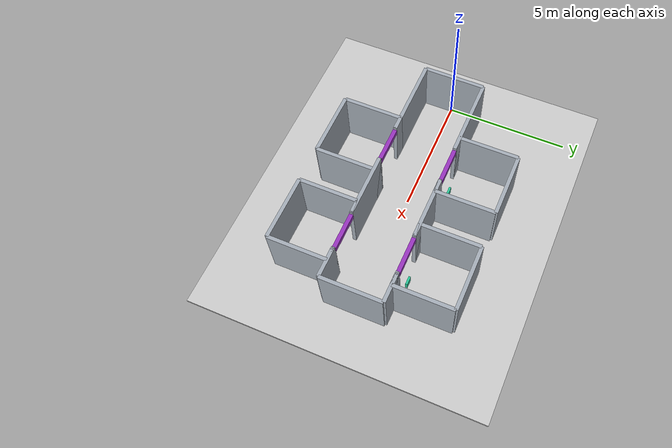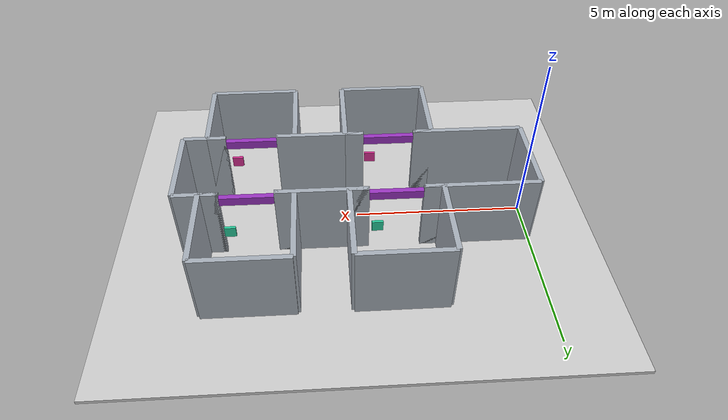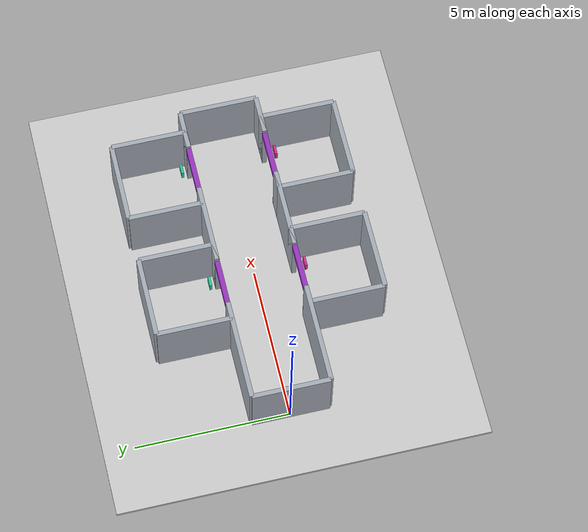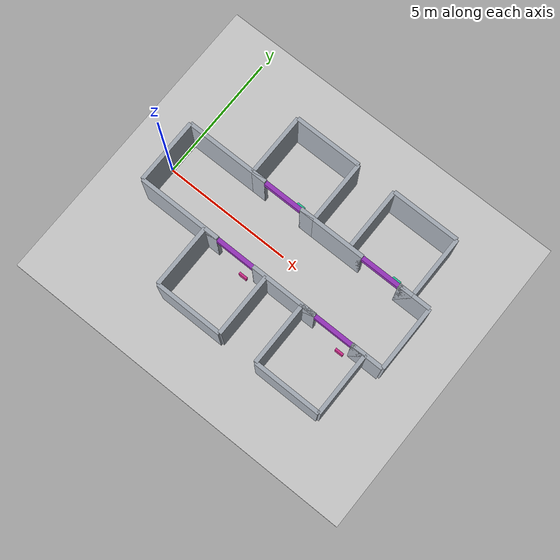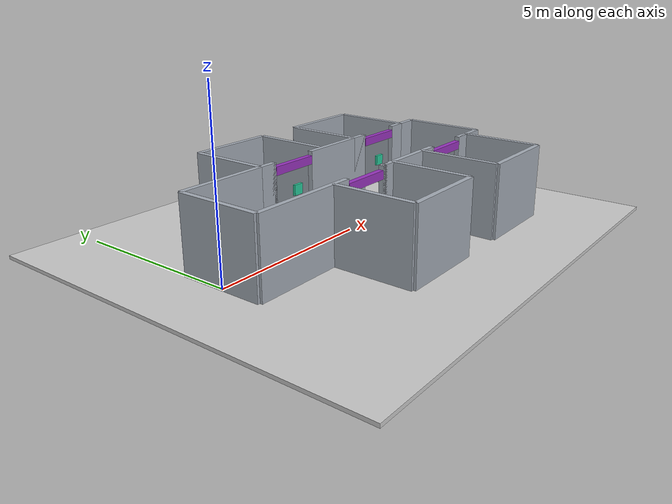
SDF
<sdf version="1.9">
  <world name="default">
    <plugin filename="gz-sim-physics-system" name="gz::sim::systems::Physics" />
    <plugin filename="gz-sim-user-commands-system" name="gz::sim::systems::UserCommands" />
    <plugin filename="gz-sim-sensors-system" name="gz::sim::systems::Sensors">
      <render_engine>ogre2</render_engine>
    </plugin>
    <plugin filename="gz-sim-imu-system" name="gz::sim::systems::Imu" />
    <plugin filename="gz-sim-contact-system" name="gz::sim::systems::Contact" />
    <physics name="3ms" type="ode">
      <max_step_size>0.003</max_step_size>
      <real_time_factor>1</real_time_factor>
    </physics>
    <light name="sun" type="directional">
      <pose>0 0 10 0 0 0</pose>
      <diffuse>0.9 0.9 0.9 1</diffuse>
      <direction>-0.5 0.1 -0.9</direction>
    </light>
    <model name="ground_plane">
      <static>true</static>
      <pose>5.05 0 -0.05 0 0 0</pose>
      <link name="body">
        <collision name="collision">
          <geometry>
            <box>
              <size>14.1 12 0.1</size>
            </box>
          </geometry>
        </collision>
        <visual name="visual">
          <geometry>
            <box>
              <size>14.1 12 0.1</size>
            </box>
          </geometry>
          <material>
            <ambient>0.8 0.8 0.8 1</ambient>
            <diffuse>0.8 0.8 0.8 1</diffuse>
          </material>
        </visual>
      </link>
    </model>
    <model name="start_wall">
      <static>true</static>
      <pose>0 0 1.1 0 0 0</pose>
      <link name="body">
        <collision name="collision">
          <geometry>
            <box>
              <size>0.15 2.5 2.2</size>
            </box>
          </geometry>
        </collision>
        <visual name="visual">
          <geometry>
            <box>
              <size>0.15 2.5 2.2</size>
            </box>
          </geometry>
          <material>
            <ambient>0.65 0.68 0.72 1</ambient>
            <diffuse>0.65 0.68 0.72 1</diffuse>
          </material>
        </visual>
      </link>
    </model>
    <model name="end_wall">
      <static>true</static>
      <pose>10.1 0 1.1 0 0 0</pose>
      <link name="body">
        <collision name="collision">
          <geometry>
            <box>
              <size>0.15 2.5 2.2</size>
            </box>
          </geometry>
        </collision>
        <visual name="visual">
          <geometry>
            <box>
              <size>0.15 2.5 2.2</size>
            </box>
          </geometry>
          <material>
            <ambient>0.65 0.68 0.72 1</ambient>
            <diffuse>0.65 0.68 0.72 1</diffuse>
          </material>
        </visual>
      </link>
    </model>
    <model name="hall_-1_1">
      <static>true</static>
      <pose>1.625 -1.25 1.1 0 0 0</pose>
      <link name="body">
        <collision name="collision">
          <geometry>
            <box>
              <size>3.25 0.15 2.2</size>
            </box>
          </geometry>
        </collision>
        <visual name="visual">
          <geometry>
            <box>
              <size>3.25 0.15 2.2</size>
            </box>
          </geometry>
          <material>
            <ambient>0.65 0.68 0.72 1</ambient>
            <diffuse>0.65 0.68 0.72 1</diffuse>
          </material>
        </visual>
      </link>
    </model>
    <model name="room_-1_1_-1">
      <static>true</static>
      <pose>2.7 -2.45 1.1 0 0 0</pose>
      <link name="body">
        <collision name="collision">
          <geometry>
            <box>
              <size>0.15 2.4 2.2</size>
            </box>
          </geometry>
        </collision>
        <visual name="visual">
          <geometry>
            <box>
              <size>0.15 2.4 2.2</size>
            </box>
          </geometry>
          <material>
            <ambient>0.65 0.68 0.72 1</ambient>
            <diffuse>0.65 0.68 0.72 1</diffuse>
          </material>
        </visual>
      </link>
    </model>
    <model name="room_-1_1_1">
      <static>true</static>
      <pose>5.3 -2.45 1.1 0 0 0</pose>
      <link name="body">
        <collision name="collision">
          <geometry>
            <box>
              <size>0.15 2.4 2.2</size>
            </box>
          </geometry>
        </collision>
        <visual name="visual">
          <geometry>
            <box>
              <size>0.15 2.4 2.2</size>
            </box>
          </geometry>
          <material>
            <ambient>0.65 0.68 0.72 1</ambient>
            <diffuse>0.65 0.68 0.72 1</diffuse>
          </material>
        </visual>
      </link>
    </model>
    <model name="room_end_-1_1">
      <static>true</static>
      <pose>4.0 -3.65 1.1 0 0 0</pose>
      <link name="body">
        <collision name="collision">
          <geometry>
            <box>
              <size>2.6 0.15 2.2</size>
            </box>
          </geometry>
        </collision>
        <visual name="visual">
          <geometry>
            <box>
              <size>2.6 0.15 2.2</size>
            </box>
          </geometry>
          <material>
            <ambient>0.65 0.68 0.72 1</ambient>
            <diffuse>0.65 0.68 0.72 1</diffuse>
          </material>
        </visual>
      </link>
    </model>
    <model name="jamb_-1_1_-1">
      <static>true</static>
      <pose>2.975 -1.25 1.1 0 0 0</pose>
      <link name="body">
        <collision name="collision">
          <geometry>
            <box>
              <size>0.55 0.15 2.2</size>
            </box>
          </geometry>
        </collision>
        <visual name="visual">
          <geometry>
            <box>
              <size>0.55 0.15 2.2</size>
            </box>
          </geometry>
          <material>
            <ambient>0.65 0.68 0.72 1</ambient>
            <diffuse>0.65 0.68 0.72 1</diffuse>
          </material>
        </visual>
      </link>
    </model>
    <model name="jamb_-1_1_1">
      <static>true</static>
      <pose>5.025 -1.25 1.1 0 0 0</pose>
      <link name="body">
        <collision name="collision">
          <geometry>
            <box>
              <size>0.55 0.15 2.2</size>
            </box>
          </geometry>
        </collision>
        <visual name="visual">
          <geometry>
            <box>
              <size>0.55 0.15 2.2</size>
            </box>
          </geometry>
          <material>
            <ambient>0.65 0.68 0.72 1</ambient>
            <diffuse>0.65 0.68 0.72 1</diffuse>
          </material>
        </visual>
      </link>
    </model>
    <model name="hall_-1_2">
      <static>true</static>
      <pose>6.05 -1.25 1.1 0 0 0</pose>
      <link name="body">
        <collision name="collision">
          <geometry>
            <box>
              <size>2.5999999999999996 0.15 2.2</size>
            </box>
          </geometry>
        </collision>
        <visual name="visual">
          <geometry>
            <box>
              <size>2.5999999999999996 0.15 2.2</size>
            </box>
          </geometry>
          <material>
            <ambient>0.65 0.68 0.72 1</ambient>
            <diffuse>0.65 0.68 0.72 1</diffuse>
          </material>
        </visual>
      </link>
    </model>
    <model name="room_-1_2_-1">
      <static>true</static>
      <pose>6.8 -2.45 1.1 0 0 0</pose>
      <link name="body">
        <collision name="collision">
          <geometry>
            <box>
              <size>0.15 2.4 2.2</size>
            </box>
          </geometry>
        </collision>
        <visual name="visual">
          <geometry>
            <box>
              <size>0.15 2.4 2.2</size>
            </box>
          </geometry>
          <material>
            <ambient>0.65 0.68 0.72 1</ambient>
            <diffuse>0.65 0.68 0.72 1</diffuse>
          </material>
        </visual>
      </link>
    </model>
    <model name="room_-1_2_1">
      <static>true</static>
      <pose>9.4 -2.45 1.1 0 0 0</pose>
      <link name="body">
        <collision name="collision">
          <geometry>
            <box>
              <size>0.15 2.4 2.2</size>
            </box>
          </geometry>
        </collision>
        <visual name="visual">
          <geometry>
            <box>
              <size>0.15 2.4 2.2</size>
            </box>
          </geometry>
          <material>
            <ambient>0.65 0.68 0.72 1</ambient>
            <diffuse>0.65 0.68 0.72 1</diffuse>
          </material>
        </visual>
      </link>
    </model>
    <model name="room_end_-1_2">
      <static>true</static>
      <pose>8.1 -3.65 1.1 0 0 0</pose>
      <link name="body">
        <collision name="collision">
          <geometry>
            <box>
              <size>2.6 0.15 2.2</size>
            </box>
          </geometry>
        </collision>
        <visual name="visual">
          <geometry>
            <box>
              <size>2.6 0.15 2.2</size>
            </box>
          </geometry>
          <material>
            <ambient>0.65 0.68 0.72 1</ambient>
            <diffuse>0.65 0.68 0.72 1</diffuse>
          </material>
        </visual>
      </link>
    </model>
    <model name="jamb_-1_2_-1">
      <static>true</static>
      <pose>7.074999999999999 -1.25 1.1 0 0 0</pose>
      <link name="body">
        <collision name="collision">
          <geometry>
            <box>
              <size>0.55 0.15 2.2</size>
            </box>
          </geometry>
        </collision>
        <visual name="visual">
          <geometry>
            <box>
              <size>0.55 0.15 2.2</size>
            </box>
          </geometry>
          <material>
            <ambient>0.65 0.68 0.72 1</ambient>
            <diffuse>0.65 0.68 0.72 1</diffuse>
          </material>
        </visual>
      </link>
    </model>
    <model name="jamb_-1_2_1">
      <static>true</static>
      <pose>9.125 -1.25 1.1 0 0 0</pose>
      <link name="body">
        <collision name="collision">
          <geometry>
            <box>
              <size>0.55 0.15 2.2</size>
            </box>
          </geometry>
        </collision>
        <visual name="visual">
          <geometry>
            <box>
              <size>0.55 0.15 2.2</size>
            </box>
          </geometry>
          <material>
            <ambient>0.65 0.68 0.72 1</ambient>
            <diffuse>0.65 0.68 0.72 1</diffuse>
          </material>
        </visual>
      </link>
    </model>
    <model name="hall_end_-1">
      <static>true</static>
      <pose>9.475 -1.25 1.1 0 0 0</pose>
      <link name="body">
        <collision name="collision">
          <geometry>
            <box>
              <size>1.25 0.15 2.2</size>
            </box>
          </geometry>
        </collision>
        <visual name="visual">
          <geometry>
            <box>
              <size>1.25 0.15 2.2</size>
            </box>
          </geometry>
          <material>
            <ambient>0.65 0.68 0.72 1</ambient>
            <diffuse>0.65 0.68 0.72 1</diffuse>
          </material>
        </visual>
      </link>
    </model>
    <model name="hall_1_1">
      <static>true</static>
      <pose>1.625 1.25 1.1 0 0 0</pose>
      <link name="body">
        <collision name="collision">
          <geometry>
            <box>
              <size>3.25 0.15 2.2</size>
            </box>
          </geometry>
        </collision>
        <visual name="visual">
          <geometry>
            <box>
              <size>3.25 0.15 2.2</size>
            </box>
          </geometry>
          <material>
            <ambient>0.65 0.68 0.72 1</ambient>
            <diffuse>0.65 0.68 0.72 1</diffuse>
          </material>
        </visual>
      </link>
    </model>
    <model name="room_1_1_-1">
      <static>true</static>
      <pose>2.7 2.45 1.1 0 0 0</pose>
      <link name="body">
        <collision name="collision">
          <geometry>
            <box>
              <size>0.15 2.4 2.2</size>
            </box>
          </geometry>
        </collision>
        <visual name="visual">
          <geometry>
            <box>
              <size>0.15 2.4 2.2</size>
            </box>
          </geometry>
          <material>
            <ambient>0.65 0.68 0.72 1</ambient>
            <diffuse>0.65 0.68 0.72 1</diffuse>
          </material>
        </visual>
      </link>
    </model>
    <model name="room_1_1_1">
      <static>true</static>
      <pose>5.3 2.45 1.1 0 0 0</pose>
      <link name="body">
        <collision name="collision">
          <geometry>
            <box>
              <size>0.15 2.4 2.2</size>
            </box>
          </geometry>
        </collision>
        <visual name="visual">
          <geometry>
            <box>
              <size>0.15 2.4 2.2</size>
            </box>
          </geometry>
          <material>
            <ambient>0.65 0.68 0.72 1</ambient>
            <diffuse>0.65 0.68 0.72 1</diffuse>
          </material>
        </visual>
      </link>
    </model>
    <model name="room_end_1_1">
      <static>true</static>
      <pose>4.0 3.65 1.1 0 0 0</pose>
      <link name="body">
        <collision name="collision">
          <geometry>
            <box>
              <size>2.6 0.15 2.2</size>
            </box>
          </geometry>
        </collision>
        <visual name="visual">
          <geometry>
            <box>
              <size>2.6 0.15 2.2</size>
            </box>
          </geometry>
          <material>
            <ambient>0.65 0.68 0.72 1</ambient>
            <diffuse>0.65 0.68 0.72 1</diffuse>
          </material>
        </visual>
      </link>
    </model>
    <model name="jamb_1_1_-1">
      <static>true</static>
      <pose>2.975 1.25 1.1 0 0 0</pose>
      <link name="body">
        <collision name="collision">
          <geometry>
            <box>
              <size>0.55 0.15 2.2</size>
            </box>
          </geometry>
        </collision>
        <visual name="visual">
          <geometry>
            <box>
              <size>0.55 0.15 2.2</size>
            </box>
          </geometry>
          <material>
            <ambient>0.65 0.68 0.72 1</ambient>
            <diffuse>0.65 0.68 0.72 1</diffuse>
          </material>
        </visual>
      </link>
    </model>
    <model name="jamb_1_1_1">
      <static>true</static>
      <pose>5.025 1.25 1.1 0 0 0</pose>
      <link name="body">
        <collision name="collision">
          <geometry>
            <box>
              <size>0.55 0.15 2.2</size>
            </box>
          </geometry>
        </collision>
        <visual name="visual">
          <geometry>
            <box>
              <size>0.55 0.15 2.2</size>
            </box>
          </geometry>
          <material>
            <ambient>0.65 0.68 0.72 1</ambient>
            <diffuse>0.65 0.68 0.72 1</diffuse>
          </material>
        </visual>
      </link>
    </model>
    <model name="hall_1_2">
      <static>true</static>
      <pose>6.05 1.25 1.1 0 0 0</pose>
      <link name="body">
        <collision name="collision">
          <geometry>
            <box>
              <size>2.5999999999999996 0.15 2.2</size>
            </box>
          </geometry>
        </collision>
        <visual name="visual">
          <geometry>
            <box>
              <size>2.5999999999999996 0.15 2.2</size>
            </box>
          </geometry>
          <material>
            <ambient>0.65 0.68 0.72 1</ambient>
            <diffuse>0.65 0.68 0.72 1</diffuse>
          </material>
        </visual>
      </link>
    </model>
    <model name="room_1_2_-1">
      <static>true</static>
      <pose>6.8 2.45 1.1 0 0 0</pose>
      <link name="body">
        <collision name="collision">
          <geometry>
            <box>
              <size>0.15 2.4 2.2</size>
            </box>
          </geometry>
        </collision>
        <visual name="visual">
          <geometry>
            <box>
              <size>0.15 2.4 2.2</size>
            </box>
          </geometry>
          <material>
            <ambient>0.65 0.68 0.72 1</ambient>
            <diffuse>0.65 0.68 0.72 1</diffuse>
          </material>
        </visual>
      </link>
    </model>
    <model name="room_1_2_1">
      <static>true</static>
      <pose>9.4 2.45 1.1 0 0 0</pose>
      <link name="body">
        <collision name="collision">
          <geometry>
            <box>
              <size>0.15 2.4 2.2</size>
            </box>
          </geometry>
        </collision>
        <visual name="visual">
          <geometry>
            <box>
              <size>0.15 2.4 2.2</size>
            </box>
          </geometry>
          <material>
            <ambient>0.65 0.68 0.72 1</ambient>
            <diffuse>0.65 0.68 0.72 1</diffuse>
          </material>
        </visual>
      </link>
    </model>
    <model name="room_end_1_2">
      <static>true</static>
      <pose>8.1 3.65 1.1 0 0 0</pose>
      <link name="body">
        <collision name="collision">
          <geometry>
            <box>
              <size>2.6 0.15 2.2</size>
            </box>
          </geometry>
        </collision>
        <visual name="visual">
          <geometry>
            <box>
              <size>2.6 0.15 2.2</size>
            </box>
          </geometry>
          <material>
            <ambient>0.65 0.68 0.72 1</ambient>
            <diffuse>0.65 0.68 0.72 1</diffuse>
          </material>
        </visual>
      </link>
    </model>
    <model name="jamb_1_2_-1">
      <static>true</static>
      <pose>7.074999999999999 1.25 1.1 0 0 0</pose>
      <link name="body">
        <collision name="collision">
          <geometry>
            <box>
              <size>0.55 0.15 2.2</size>
            </box>
          </geometry>
        </collision>
        <visual name="visual">
          <geometry>
            <box>
              <size>0.55 0.15 2.2</size>
            </box>
          </geometry>
          <material>
            <ambient>0.65 0.68 0.72 1</ambient>
            <diffuse>0.65 0.68 0.72 1</diffuse>
          </material>
        </visual>
      </link>
    </model>
    <model name="jamb_1_2_1">
      <static>true</static>
      <pose>9.125 1.25 1.1 0 0 0</pose>
      <link name="body">
        <collision name="collision">
          <geometry>
            <box>
              <size>0.55 0.15 2.2</size>
            </box>
          </geometry>
        </collision>
        <visual name="visual">
          <geometry>
            <box>
              <size>0.55 0.15 2.2</size>
            </box>
          </geometry>
          <material>
            <ambient>0.65 0.68 0.72 1</ambient>
            <diffuse>0.65 0.68 0.72 1</diffuse>
          </material>
        </visual>
      </link>
    </model>
    <model name="hall_end_1">
      <static>true</static>
      <pose>9.475 1.25 1.1 0 0 0</pose>
      <link name="body">
        <collision name="collision">
          <geometry>
            <box>
              <size>1.25 0.15 2.2</size>
            </box>
          </geometry>
        </collision>
        <visual name="visual">
          <geometry>
            <box>
              <size>1.25 0.15 2.2</size>
            </box>
          </geometry>
          <material>
            <ambient>0.65 0.68 0.72 1</ambient>
            <diffuse>0.65 0.68 0.72 1</diffuse>
          </material>
        </visual>
      </link>
    </model>
    <model name="r3geo_base_r008_right_1_lintel">
      <static>true</static>
      <pose>4.0 -1.25 1.95 0 0 0</pose>
      <link name="body">
        <collision name="collision">
          <geometry>
            <box>
              <size>1.5 0.16 0.25</size>
            </box>
          </geometry>
        </collision>
        <visual name="visual">
          <geometry>
            <box>
              <size>1.5 0.16 0.25</size>
            </box>
          </geometry>
          <material>
            <ambient>0.6 0.2 0.75 1</ambient>
            <diffuse>0.6 0.2 0.75 1</diffuse>
          </material>
        </visual>
      </link>
    </model>
    <model name="r3geo_base_r008_right_1_entrance_sign">
      <static>true</static>
      <pose>4.53 -1.55 1.05 0 0 0</pose>
      <link name="body">
        <visual name="visual">
          <geometry>
            <box>
              <size>0.32 0.08 0.32</size>
            </box>
          </geometry>
          <material>
            <ambient>0.84 0.18 0.57 1</ambient>
            <diffuse>0.84 0.18 0.57 1</diffuse>
          </material>
        </visual>
      </link>
    </model>
    <model name="r3geo_base_r008_right_2_lintel">
      <static>true</static>
      <pose>8.1 -1.25 1.95 0 0 0</pose>
      <link name="body">
        <collision name="collision">
          <geometry>
            <box>
              <size>1.5 0.16 0.25</size>
            </box>
          </geometry>
        </collision>
        <visual name="visual">
          <geometry>
            <box>
              <size>1.5 0.16 0.25</size>
            </box>
          </geometry>
          <material>
            <ambient>0.6 0.2 0.75 1</ambient>
            <diffuse>0.6 0.2 0.75 1</diffuse>
          </material>
        </visual>
      </link>
    </model>
    <model name="r3geo_base_r008_right_2_entrance_sign">
      <static>true</static>
      <pose>8.629999999999999 -1.55 1.05 0 0 0</pose>
      <link name="body">
        <visual name="visual">
          <geometry>
            <box>
              <size>0.32 0.08 0.32</size>
            </box>
          </geometry>
          <material>
            <ambient>0.84 0.18 0.57 1</ambient>
            <diffuse>0.84 0.18 0.57 1</diffuse>
          </material>
        </visual>
      </link>
    </model>
    <model name="r3geo_base_r008_left_1_lintel">
      <static>true</static>
      <pose>4.0 1.25 1.95 0 0 0</pose>
      <link name="body">
        <collision name="collision">
          <geometry>
            <box>
              <size>1.5 0.16 0.25</size>
            </box>
          </geometry>
        </collision>
        <visual name="visual">
          <geometry>
            <box>
              <size>1.5 0.16 0.25</size>
            </box>
          </geometry>
          <material>
            <ambient>0.6 0.2 0.75 1</ambient>
            <diffuse>0.6 0.2 0.75 1</diffuse>
          </material>
        </visual>
      </link>
    </model>
    <model name="r3geo_base_r008_left_1_entrance_sign">
      <static>true</static>
      <pose>4.53 1.55 1.05 0 0 0</pose>
      <link name="body">
        <visual name="visual">
          <geometry>
            <box>
              <size>0.32 0.08 0.32</size>
            </box>
          </geometry>
          <material>
            <ambient>0.16 0.8 0.61 1</ambient>
            <diffuse>0.16 0.8 0.61 1</diffuse>
          </material>
        </visual>
      </link>
    </model>
    <model name="r3geo_base_r008_left_2_lintel">
      <static>true</static>
      <pose>8.1 1.25 1.95 0 0 0</pose>
      <link name="body">
        <collision name="collision">
          <geometry>
            <box>
              <size>1.5 0.16 0.25</size>
            </box>
          </geometry>
        </collision>
        <visual name="visual">
          <geometry>
            <box>
              <size>1.5 0.16 0.25</size>
            </box>
          </geometry>
          <material>
            <ambient>0.6 0.2 0.75 1</ambient>
            <diffuse>0.6 0.2 0.75 1</diffuse>
          </material>
        </visual>
      </link>
    </model>
    <model name="r3geo_base_r008_left_2_entrance_sign">
      <static>true</static>
      <pose>8.629999999999999 1.55 1.05 0 0 0</pose>
      <link name="body">
        <visual name="visual">
          <geometry>
            <box>
              <size>0.32 0.08 0.32</size>
            </box>
          </geometry>
          <material>
            <ambient>0.16 0.8 0.61 1</ambient>
            <diffuse>0.16 0.8 0.61 1</diffuse>
          </material>
        </visual>
      </link>
    </model>
  </world>
</sdf>
